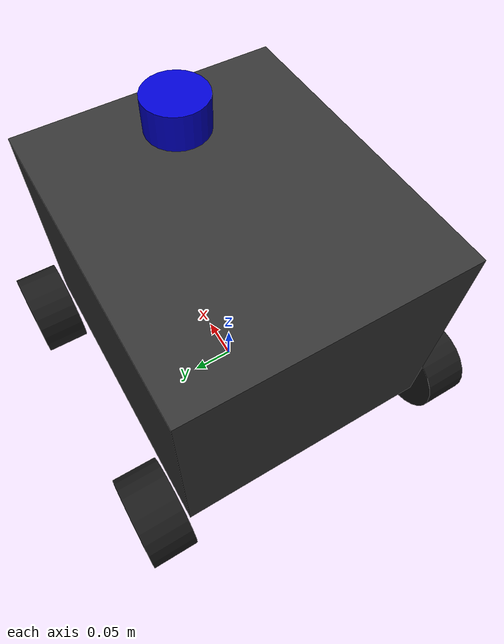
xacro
<?xml version="1.0" ?>
<robot name="mainbot" xmlns:xacro="http://wiki.ros.org/xacro">

  <xacro:include filename="$(find mainbot)/urdf/base/base.urdf.xacro" />
  <xacro:include filename="$(find mainbot)/urdf/wheels/mecanum_wheel.urdf.xacro" />
  <xacro:include filename="$(find mainbot)/urdf/sensors/lidar.urdf.xacro" />
  <xacro:include filename="$(find mainbot)/urdf/sensors/imu.urdf.xacro" />

  <xacro:property name="wheel_offset_x" value="0.15" />
  <xacro:property name="wheel_offset_y" value="0.18" />
  <xacro:property name="wheel_offset_z" value="-0.125" />
  <xacro:custom_base prefix="robot_" />

  <!-- Bánh Trước Trái (Front Left) -->
  <xacro:mainbot_mecanum_wheel
    prefix="robot_front_left_" parent="robot_base_link" reflect="true" use_mesh="false"
    xyz="${wheel_offset_x} ${wheel_offset_y} ${wheel_offset_z}"
    fdir="1 -1 0" />

  <!-- Bánh Trước Phải (Front Right) -->
  <xacro:mainbot_mecanum_wheel
    prefix="robot_front_right_" parent="robot_base_link" reflect="false" use_mesh="false"
    xyz="${wheel_offset_x} -${wheel_offset_y} ${wheel_offset_z}"
    fdir="1 1 0" />

  <!-- Bánh Sau Trái (Back Left) -->
  <xacro:mainbot_mecanum_wheel
    prefix="robot_back_left_" parent="robot_base_link" reflect="false" use_mesh="false"
    xyz="-${wheel_offset_x} ${wheel_offset_y} ${wheel_offset_z}"
    fdir="1 1 0" />

  <!-- Bánh Sau Phải (Back Right) -->
  <xacro:mainbot_mecanum_wheel
    prefix="robot_back_right_" parent="robot_base_link" reflect="true" use_mesh="false"
    xyz="-${wheel_offset_x} -${wheel_offset_y} ${wheel_offset_z}"
    fdir="1 -1 0" />

  <xacro:mainbot_lidar prefix="robot_" parent="robot_base_link" xyz="0.10 0 0.15" rpy="0 0 0" />
  <xacro:mainbot_imu prefix="robot_" parent="robot_base_link" xyz="0 0 0" rpy="0 0 0" />

  <gazebo>
    <plugin filename="gz-sim-mecanum-drive-system" name="gz::sim::systems::MecanumDrive">
      <front_left_joint>robot_front_left_wheel_joint</front_left_joint>
      <front_right_joint>robot_front_right_wheel_joint</front_right_joint>
      <back_left_joint>robot_back_left_wheel_joint</back_left_joint>
      <back_right_joint>robot_back_right_wheel_joint</back_right_joint>

      <wheel_separation>0.36</wheel_separation>
      <wheelbase>0.30</wheelbase>
      <wheel_radius>0.050</wheel_radius>

      <odom_publish_frequency>50</odom_publish_frequency>
      <topic>/cmd_vel</topic>
      <odom_topic>/odom</odom_topic>
      <publish_odom>true</publish_odom>

      <publish_odom_tf>false</publish_odom_tf>

      <frame_id>odom</frame_id>
      <child_frame_id>robot_base_footprint</child_frame_id>
    </plugin>

    <plugin filename="gz-sim-joint-state-publisher-system" name="gz::sim::systems::JointStatePublisher">
      <update_rate>50</update_rate>
      <topic>/joint_states</topic>
      <joint_name>robot_front_left_wheel_joint</joint_name>
      <joint_name>robot_front_right_wheel_joint</joint_name>
      <joint_name>robot_back_left_wheel_joint</joint_name>
      <joint_name>robot_back_right_wheel_joint</joint_name>
    </plugin>

    <plugin filename="gz-sim-imu-system" name="gz::sim::systems::Imu">
    </plugin>
  </gazebo>
</robot>

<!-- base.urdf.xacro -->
<robot xmlns:xacro="http://wiki.ros.org/xacro">

  <xacro:macro name="custom_base" params="prefix">

    <xacro:property name="base_length" value="0.35" />
    <xacro:property name="base_width"  value="0.30" />
    <xacro:property name="base_height" value="0.25" />
    <xacro:property name="base_mass"   value="20.0" />
    <xacro:property name="wheel_radius" value="0.05" />
    <xacro:property name="ground_clearance" value="0.05" />

    <link name="${prefix}base_footprint">
      <visual>
        <origin xyz="0 0 0" rpy="0 0 0" />
        <geometry>
          <box size="0.001 0.001 0.001" />
        </geometry>
      </visual>
    </link>

    <joint name="${prefix}base_footprint_joint" type="fixed">
      <origin xyz="0 0 ${ground_clearance + (base_height/2)}" rpy="0 0 0" />
      <parent link="${prefix}base_footprint" />
      <child link="${prefix}base_link" />
    </joint>

    <link name="${prefix}base_link">
      <inertial>
        <mass value="${base_mass}" />
        <origin xyz="0 0 0" rpy="0 0 0" />
        <inertia
          ixx="${(base_mass*(base_width*base_width + base_height*base_height))/12}" ixy="0.0" ixz="0.0"
          iyy="${(base_mass*(base_length*base_length + base_height*base_height))/12}" iyz="0.0"
          izz="${(base_mass*(base_length*base_length + base_width*base_width))/12}" />
      </inertial>

      <visual>
        <origin xyz="0 0 0" rpy="0 0 0" />
        <geometry>
          <box size="${base_length} ${base_width} ${base_height}" />
        </geometry>
        <material name="dark_grey">
          <color rgba="0.2 0.2 0.2 1.0"/>
        </material>
      </visual>

      <collision>
        <origin xyz="0 0 0" rpy="0 0 0" />
        <geometry>
          <box size="${base_length} ${base_width} ${base_height}" />
        </geometry>
      </collision>
    </link>

  </xacro:macro>
</robot>

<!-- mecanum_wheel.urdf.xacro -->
<robot xmlns:xacro="http://wiki.ros.org/xacro" xmlns:gz="http://gazebosim.org/schema">

  <!-- Đã giữ nguyên tham số fdir của bạn -->
  <xacro:macro name="mainbot_mecanum_wheel" params="prefix parent xyz reflect fdir use_mesh:=false">

    <xacro:property name="wheel_radius" value="0.05" />
    <xacro:property name="wheel_length" value="0.05" />
    <xacro:property name="wheel_mass"   value="1.0" />

    <joint name="${prefix}wheel_joint" type="continuous">
      <parent link="${parent}" />
      <child link="${prefix}wheel_link" />
      <origin xyz="${xyz}" rpy="0 0 0" />
      <axis xyz="0 1 0" />
      <dynamics damping="0.1" friction="0.1"/>
      <limit effort="15.0" velocity="20.0" />
    </joint>

    <link name="${prefix}wheel_link">
      <visual>
        <origin xyz="0 0 0" rpy="${pi/2} 0 0" />
        <geometry>
          <xacro:if value="${use_mesh}">
            <xacro:if value="${reflect}">
              <mesh filename="package://mainbot/meshes/wheels/mecanum_left.dae" scale="1 1 1"/>
            </xacro:if>
            <xacro:unless value="${reflect}">
              <mesh filename="package://mainbot/meshes/wheels/mecanum_right.dae" scale="1 1 1"/>
            </xacro:unless>
          </xacro:if>
          <xacro:unless value="${use_mesh}">
            <cylinder radius="${wheel_radius}" length="${wheel_length}" />
          </xacro:unless>
        </geometry>
        <material name="black">
          <color rgba="0.1 0.1 0.1 1" />
        </material>
      </visual>

      <collision>
        <origin xyz="0 0 0" rpy="${pi/2} 0 0" />
        <geometry>
          <sphere radius="${wheel_radius}" />
        </geometry>
      </collision>

      <inertial>
        <mass value="${wheel_mass}" />
        <origin xyz="0 0 0" rpy="${pi/2} 0 0" />
        <inertia
          ixx="${(wheel_mass*(3*wheel_radius*wheel_radius + wheel_length*wheel_length))/12}" ixy="0" ixz="0"
          iyy="${(wheel_mass*(3*wheel_radius*wheel_radius + wheel_length*wheel_length))/12}" iyz="0"
          izz="${(wheel_mass*wheel_radius*wheel_radius)/2}" />
      </inertial>
    </link>

    <gazebo reference="${prefix}wheel_link">
      <mu1>1.5</mu1>
      <mu2>0.05</mu2>
      <fdir1 gz:expressed_in="${parent}">${fdir}</fdir1>

      <kp>1000000.0</kp>   <kd>100.0</kd>       <max_vel>1.0</max_vel> <min_depth>0.001</min_depth> <material>Gazebo/DarkGrey</material>
    </gazebo>

  </xacro:macro>
</robot>

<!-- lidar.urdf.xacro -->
<robot xmlns:xacro="http://wiki.ros.org/xacro" xmlns:gz="http://gazebosim.org/schema">

  <xacro:macro name="mainbot_lidar" params="prefix parent xyz rpy">

    <xacro:property name="lidar_radius" value="0.035" />
    <xacro:property name="lidar_length" value="0.04" />
    <xacro:property name="lidar_mass"   value="0.2" />

    <joint name="${prefix}lidar_joint" type="fixed">
      <parent link="${parent}" />
      <child link="${prefix}lidar_link" />
      <origin xyz="${xyz}" rpy="${rpy}" />
    </joint>

    <link name="${prefix}lidar_link">
      <visual>
        <origin xyz="0 0 0" rpy="0 0 0" />
        <geometry>
          <cylinder radius="${lidar_radius}" length="${lidar_length}" />
        </geometry>
        <material name="blue">
          <color rgba="0.0 0.0 0.8 1.0" />
        </material>
      </visual>
      <collision>
        <origin xyz="0 0 0" rpy="0 0 0" />
        <geometry>
          <cylinder radius="${lidar_radius}" length="${lidar_length}" />
        </geometry>
      </collision>
      <inertial>
        <mass value="${lidar_mass}" />
        <origin xyz="0 0 0" rpy="0 0 0" />
        <inertia
          ixx="${(lidar_mass*(3*lidar_radius*lidar_radius + lidar_length*lidar_length))/12}" ixy="0" ixz="0"
          iyy="${(lidar_mass*(3*lidar_radius*lidar_radius + lidar_length*lidar_length))/12}" iyz="0"
          izz="${(lidar_mass*lidar_radius*lidar_radius)/2}" />
      </inertial>
    </link>

    <gazebo reference="${prefix}lidar_link">
      <sensor type="gpu_lidar" name="${prefix}lidar_sensor">
        <topic>/scan</topic>
        <gz_frame_id>${prefix}lidar_link</gz_frame_id>
        <pose>0 0 0 0 0 0</pose>
        <visualize>true</visualize>
        <update_rate>20.0</update_rate>
        <lidar>
          <scan>
            <horizontal>
              <samples>360</samples>
              <resolution>1</resolution>
              <min_angle>-3.14159</min_angle>
              <max_angle>3.14159</max_angle>
            </horizontal>
          </scan>
          <range>
            <min>0.12</min>
            <max>10.0</max>
            <resolution>0.01</resolution>
          </range>
          <noise>
            <type>gaussian</type>
            <mean>0.0</mean>
            <stddev>0.01</stddev>
          </noise>
        </lidar>
      </sensor>
      <material>Gazebo/Blue</material>
    </gazebo>
  </xacro:macro>

</robot>

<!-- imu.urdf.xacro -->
<robot xmlns:xacro="http://wiki.ros.org/xacro">

  <xacro:macro name="mainbot_imu" params="prefix parent xyz rpy">

    <xacro:property name="imu_size" value="0.02" />
    <xacro:property name="imu_mass" value="0.05" />

    <!-- Joint kết nối IMU vào khung xe -->
    <joint name="${prefix}imu_joint" type="fixed">
      <parent link="${parent}" />
      <child link="${prefix}imu_link" />
      <origin xyz="${xyz}" rpy="${rpy}" />
    </joint>

    <!-- Link vật lý của IMU (Tuân thủ rule: dùng khối box, không dùng mesh) -->
    <link name="${prefix}imu_link">
      <visual>
        <origin xyz="0 0 0" rpy="0 0 0" />
        <geometry>
          <box size="${imu_size} ${imu_size} ${imu_size}" />
        </geometry>
        <material name="red">
          <color rgba="0.8 0.0 0.0 1.0" />
        </material>
      </visual>
      <collision>
        <origin xyz="0 0 0" rpy="0 0 0" />
        <geometry>
          <box size="${imu_size} ${imu_size} ${imu_size}" />
        </geometry>
      </collision>
      <inertial>
        <mass value="${imu_mass}" />
        <origin xyz="0 0 0" rpy="0 0 0" />
        <inertia
          ixx="${(imu_mass*(imu_size*imu_size + imu_size*imu_size))/12}" ixy="0" ixz="0"
          iyy="${(imu_mass*(imu_size*imu_size + imu_size*imu_size))/12}" iyz="0"
          izz="${(imu_mass*(imu_size*imu_size + imu_size*imu_size))/12}" />
      </inertial>
    </link>

    <!-- Plugin IMU cho Gazebo Harmonic -->
    <gazebo reference="${prefix}imu_link">
      <sensor type="imu" name="${prefix}imu_sensor">
        <topic>/imu/data</topic>
        <gz_frame_id>${prefix}imu_link</gz_frame_id>
        <always_on>true</always_on>
        <update_rate>50.0</update_rate>
        <visualize>true</visualize>
        <imu>
          <angular_velocity>
            <x><noise type="gaussian"><mean>0.0</mean><stddev>2e-4</stddev></noise></x>
            <y><noise type="gaussian"><mean>0.0</mean><stddev>2e-4</stddev></noise></y>
            <z><noise type="gaussian"><mean>0.0</mean><stddev>2e-4</stddev></noise></z>
          </angular_velocity>
          <linear_acceleration>
            <x><noise type="gaussian"><mean>0.0</mean><stddev>1.7e-2</stddev></noise></x>
            <y><noise type="gaussian"><mean>0.0</mean><stddev>1.7e-2</stddev></noise></y>
            <z><noise type="gaussian"><mean>0.0</mean><stddev>1.7e-2</stddev></noise></z>
          </linear_acceleration>
        </imu>
      </sensor>
      <material>Gazebo/Red</material>
    </gazebo>
  </xacro:macro>

</robot>
